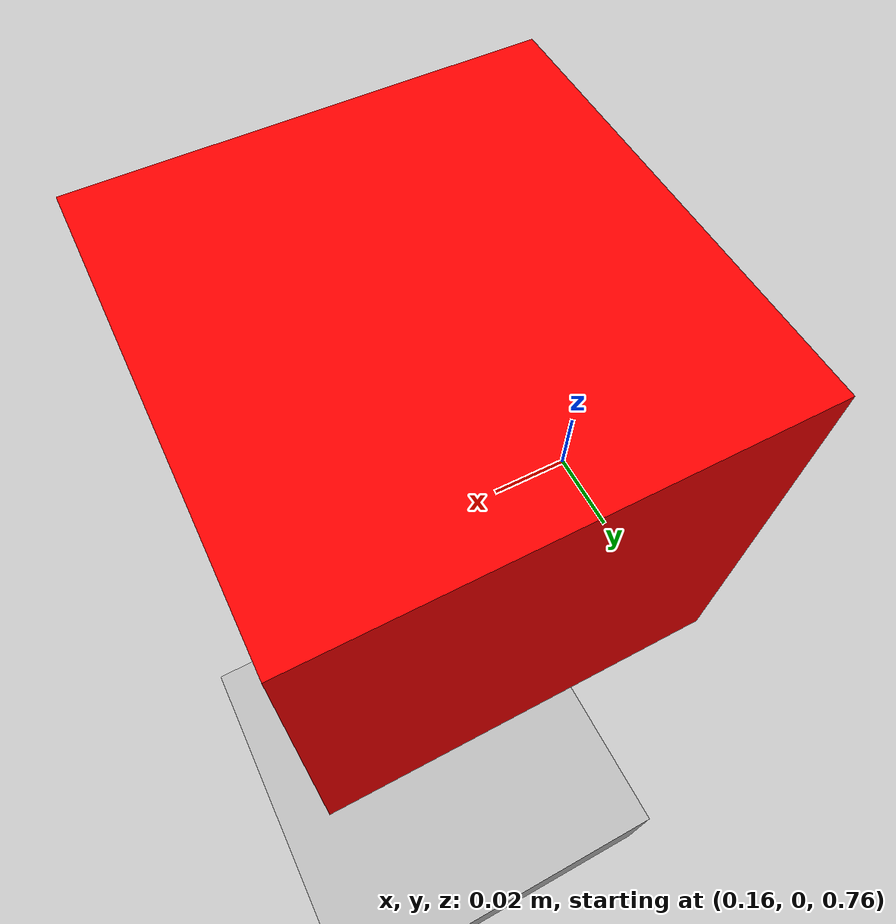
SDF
<?xml version="1.0" ?>
<sdf version="1.9">
  <world name="task_aware_world">

    <!-- Systems: these make physics + sensors + scene updates work in Gazebo Harmonic -->
    <plugin filename="gz-sim-physics-system"
            name="gz::sim::systems::Physics"/>
    <plugin filename="gz-sim-sensors-system"
            name="gz::sim::systems::Sensors"/>
    <plugin filename="gz-sim-scene-broadcaster-system"
            name="gz::sim::systems::SceneBroadcaster"/>
    <plugin filename="gz-sim-user-commands-system"
            name="gz::sim::systems::UserCommands"/>

    <!-- Lighting -->
    <include>
      <uri>https://fuel.gazebosim.org/1.0/OpenRobotics/models/Sun</uri>
    </include>
    <scene>
      <ambient>0.5 0.5 0.5 1</ambient>
      <background>0.7 0.7 0.7 1</background>
    </scene>

    <!-- Ground plane -->
    <include>
      <uri>https://fuel.gazebosim.org/1.0/OpenRobotics/models/Ground Plane</uri>
    </include>

    <!-- Simple table (static box) -->
    <model name="table">
      <static>true</static>
      <link name="link">
        <!-- table surface around z=0.5 -->
        <pose>0 0 0.5 0 0 0</pose>

        <collision name="collision">
          <geometry>
            <box><size>1.2 0.8 0.05</size></box>
          </geometry>
        </collision>

        <visual name="visual">
          <geometry>
            <box><size>1.2 0.8 0.05</size></box>
          </geometry>
        </visual>
      </link>
    </model>

    <!-- Fixed overhead RGB camera -->
    <model name="fixed_camera">
      <static>true</static>
      <link name="camera_link">
        <!-- x y z roll pitch yaw -->
        <!-- 1.8m above origin, pitched down 90deg -->
        <pose>0 0 1.8 0 1.5708 0</pose>

        <sensor name="rgb_camera" type="camera">
          <always_on>true</always_on>
          <update_rate>15</update_rate>
          <visualize>true</visualize>

          <!-- Optional: makes topic discovery easier -->
          <topic>/fixed_camera/rgb/image</topic>

          <camera>
            <horizontal_fov>1.047</horizontal_fov>
            <image>
              <width>1280</width>
              <height>720</height>
              <format>R8G8B8</format>
            </image>
            <clip>
              <near>0.05</near>
              <far>10</far>
            </clip>
          </camera>
        </sensor>

      </link>
    </model>

    <model name="test_box">
      <static>false</static>
      <pose>0.2 0 0.8 0 0 0</pose>
      <link name="link">
        <inertial>
          <mass>1.0</mass>
        </inertial>
        <collision name="collision">
          <geometry>
            <box><size>0.1 0.1 0.1</size></box>
          </geometry>
        </collision>
        <visual name="visual">
          <geometry>
            <box><size>0.1 0.1 0.1</size></box>
          </geometry>
          <material>
            <ambient>1 0 0 1</ambient>
          </material>
        </visual>
      </link>
    </model>

  </world>
</sdf>
